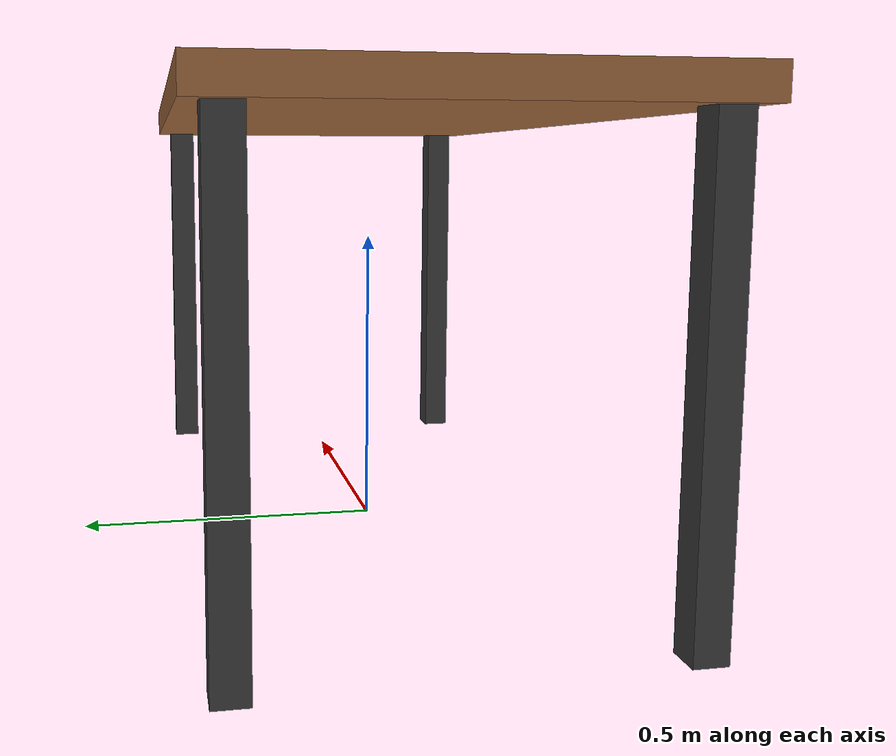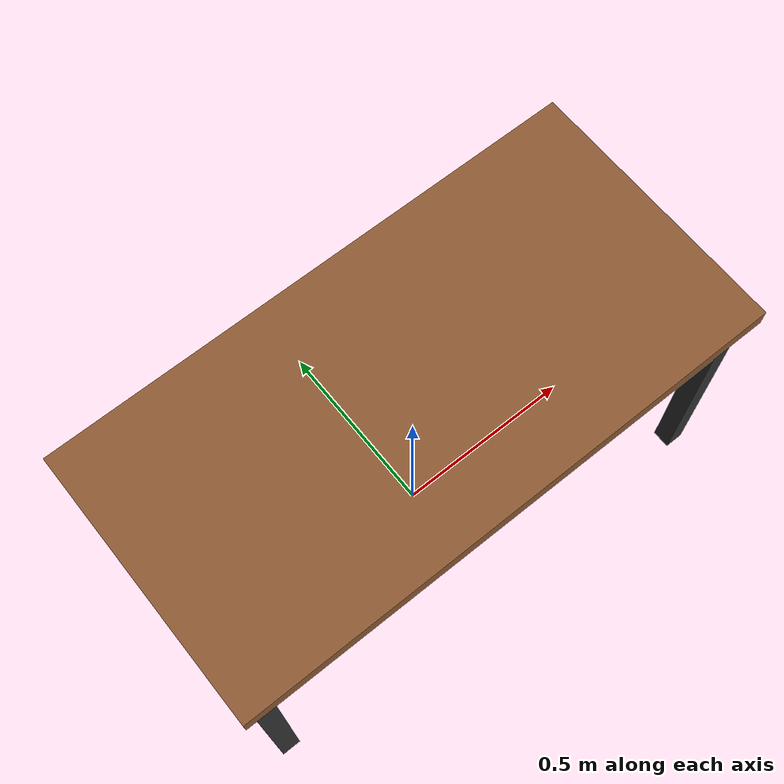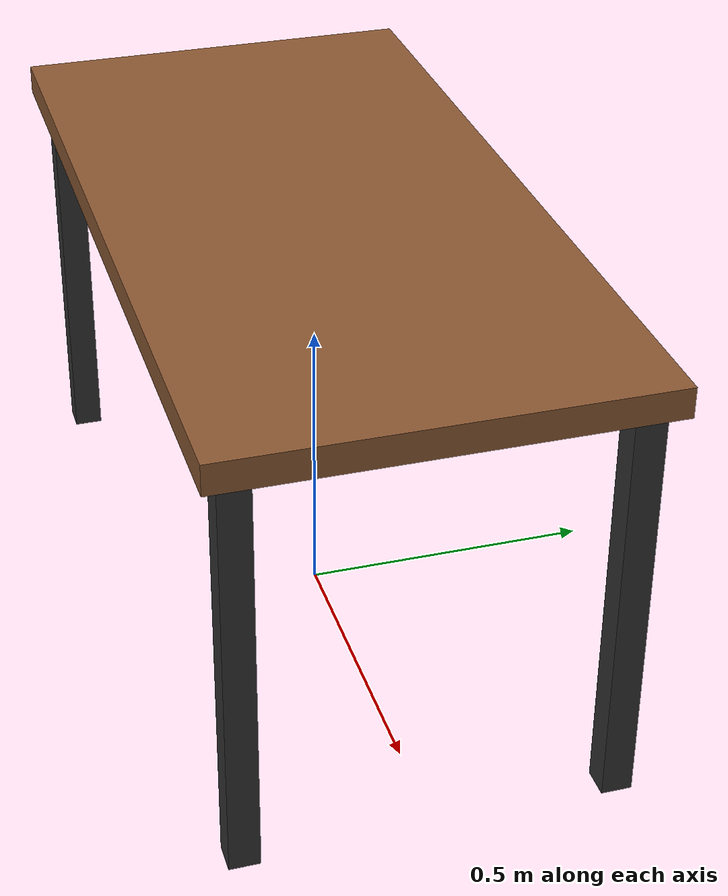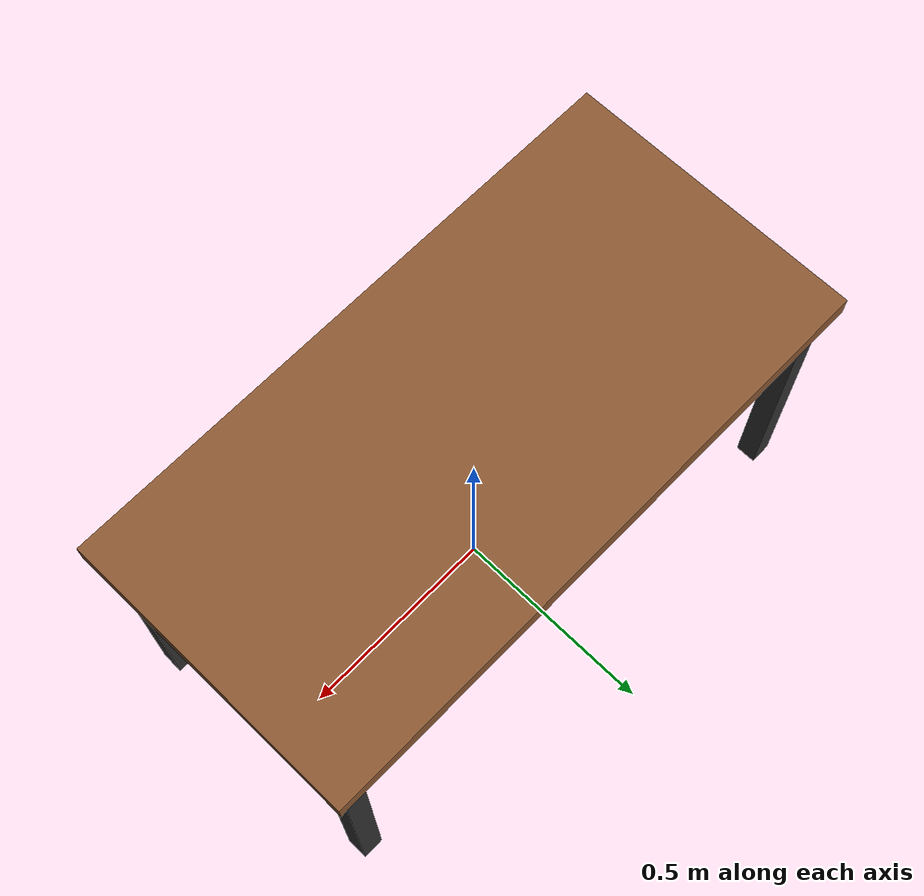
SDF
<?xml version="1.0"?>

<sdf version="1.10">

  <model name="office_desk">

    <static>true</static>

    <link name="desk_link">

      <!-- DESK TOP                    -->

      <collision name="top_collision">

        <pose>0 0 0.72 0 0 0</pose>

        <geometry>
          <box>
            <size>1.4 0.7 0.05</size>
          </box>
        </geometry>

      </collision>

      <visual name="top_visual">

        <pose>0 0 0.72 0 0 0</pose>

        <geometry>
          <box>
            <size>1.4 0.7 0.05</size>
          </box>
        </geometry>

        <material>
          <ambient>0.55 0.35 0.2 1</ambient>
          <diffuse>0.55 0.35 0.2 1</diffuse>
          <specular>0.2 0.2 0.2 1</specular>
        </material>

      </visual>

      <!-- LEG 1                      -->

      <collision name="leg_1_collision">
        <pose>0.65 0.3 0.35 0 0 0</pose>
        <geometry>
          <box>
            <size>0.05 0.05 0.7</size>
          </box>
        </geometry>
      </collision>

      <visual name="leg_1_visual">
        <pose>0.65 0.3 0.35 0 0 0</pose>
        <geometry>
          <box>
            <size>0.05 0.05 0.7</size>
          </box>
        </geometry>
        <material>
          <ambient>0.2 0.2 0.2 1</ambient>
          <diffuse>0.2 0.2 0.2 1</diffuse>
        </material>
      </visual>

      <!-- LEG 2                      -->

      <collision name="leg_2_collision">
        <pose>-0.65 0.3 0.35 0 0 0</pose>
        <geometry>
          <box>
            <size>0.05 0.05 0.7</size>
          </box>
        </geometry>
      </collision>

      <visual name="leg_2_visual">
        <pose>-0.65 0.3 0.35 0 0 0</pose>
        <geometry>
          <box>
            <size>0.05 0.05 0.7</size>
          </box>
        </geometry>
        <material>
          <ambient>0.2 0.2 0.2 1</ambient>
          <diffuse>0.2 0.2 0.2 1</diffuse>
        </material>
      </visual>

      <!-- LEG 3                      -->

      <collision name="leg_3_collision">
        <pose>0.65 -0.3 0.35 0 0 0</pose>
        <geometry>
          <box>
            <size>0.05 0.05 0.7</size>
          </box>
        </geometry>
      </collision>

      <visual name="leg_3_visual">
        <pose>0.65 -0.3 0.35 0 0 0</pose>
        <geometry>
          <box>
            <size>0.05 0.05 0.7</size>
          </box>
        </geometry>
        <material>
          <ambient>0.2 0.2 0.2 1</ambient>
          <diffuse>0.2 0.2 0.2 1</diffuse>
        </material>
      </visual>

      <!-- LEG 4                      -->

      <collision name="leg_4_collision">
        <pose>-0.65 -0.3 0.35 0 0 0</pose>
        <geometry>
          <box>
            <size>0.05 0.05 0.7</size>
          </box>
        </geometry>
      </collision>

      <visual name="leg_4_visual">
        <pose>-0.65 -0.3 0.35 0 0 0</pose>
        <geometry>
          <box>
            <size>0.05 0.05 0.7</size>
          </box>
        </geometry>
        <material>
          <ambient>0.2 0.2 0.2 1</ambient>
          <diffuse>0.2 0.2 0.2 1</diffuse>
        </material>
      </visual>

    </link>

  </model>

</sdf>
